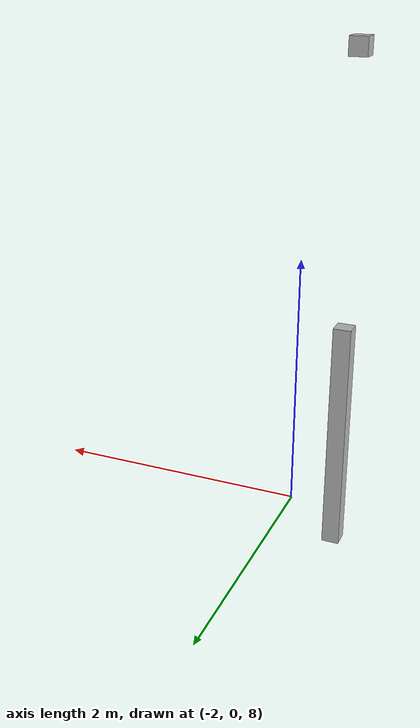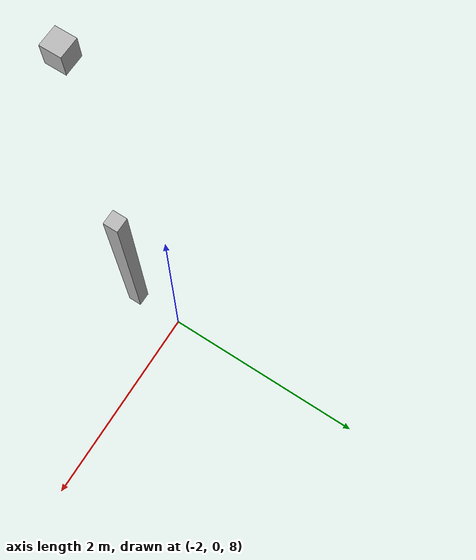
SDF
<sdf version="1.7">
 <world name="default">
  <model name="orthogonal_747_2.000.15_TS">
   <static>1</static>
   <link name="z_link_5_2_2">
    <inertial>
     <mass>1</mass>
     <inertia>
      <ixx>0.166667</ixx>
      <ixy>0</ixy>
      <ixz>0</ixz>
      <iyy>0.166667</iyy>
      <iyz>0</iyz>
      <izz>0.166667</izz>
     </inertia>
    </inertial>
    <pose>4.3 4.3 10.75 0 -0 0</pose>
    <visual name="visual_0">
     <laser_retro>4817</laser_retro>
     <geometry><box><size>0.15 1e-06 2</size></box></geometry>
     <material>
      <script><name>Gazebo/Grey</name><uri>file://media/materials/scripts/gazebo.material</uri></script>
      <shader type="pixel"><normal_map>__default__</normal_map></shader>
      <ambient>0.678 0.498 0.659 1</ambient>
      <diffuse>0.7 0.7 0.7 1</diffuse>
      <specular>0.01 0.01 0.01 1</specular>
      <emissive>0 0 0 1</emissive>
     </material>
     <pose>0 -0.075 0 0 -0 0</pose>
     <transparency>1</transparency>
    </visual>
    <visual name="visual_1">
     <laser_retro>4818</laser_retro>
     <geometry><box><size>0.15 1e-06 2</size></box></geometry>
     <material>
      <script><name>Gazebo/Grey</name><uri>file://media/materials/scripts/gazebo.material</uri></script>
      <shader type="pixel"><normal_map>__default__</normal_map></shader>
      <ambient>0.447 0.624 0.812 1</ambient>
      <diffuse>0.7 0.7 0.7 1</diffuse>
      <specular>0.01 0.01 0.01 1</specular>
      <emissive>0 0 0 1</emissive>
     </material>
     <pose>0 0.075 0 0 -0 0</pose>
     <transparency>1</transparency>
    </visual>
    <visual name="visual_2">
     <laser_retro>4819</laser_retro>
     <geometry><box><size>0.15 0.15 1e-06</size></box></geometry>
     <material>
      <script><name>Gazebo/Grey</name><uri>file://media/materials/scripts/gazebo.material</uri></script>
      <shader type="pixel"><normal_map>__default__</normal_map></shader>
      <ambient>0.988 0.686 0.243 1</ambient>
      <diffuse>0.7 0.7 0.7 1</diffuse>
      <specular>0.01 0.01 0.01 1</specular>
      <emissive>0 0 0 1</emissive>
     </material>
     <pose>0 0 -1 0 -0 0</pose>
     <transparency>1</transparency>
    </visual>
    <visual name="visual_3">
     <laser_retro>4820</laser_retro>
     <geometry><box><size>1e-06 0.15 2</size></box></geometry>
     <material>
      <script><name>Gazebo/Grey</name><uri>file://media/materials/scripts/gazebo.material</uri></script>
      <shader type="pixel"><normal_map>__default__</normal_map></shader>
      <ambient>0.988 0.914 0.31 1</ambient>
      <diffuse>0.7 0.7 0.7 1</diffuse>
      <specular>0.01 0.01 0.01 1</specular>
      <emissive>0 0 0 1</emissive>
     </material>
     <pose>0.075 0 0 0 -0 0</pose>
     <transparency>1</transparency>
    </visual>
    <visual name="visual_4">
     <laser_retro>4821</laser_retro>
     <geometry><box><size>0.15 0.15 1e-06</size></box></geometry>
     <material>
      <script><name>Gazebo/Grey</name><uri>file://media/materials/scripts/gazebo.material</uri></script>
      <shader type="pixel"><normal_map>__default__</normal_map></shader>
      <ambient>0.937 0.161 0.161 1</ambient>
      <diffuse>0.7 0.7 0.7 1</diffuse>
      <specular>0.01 0.01 0.01 1</specular>
      <emissive>0 0 0 1</emissive>
     </material>
     <pose>0 0 1 0 -0 0</pose>
     <transparency>1</transparency>
    </visual>
    <visual name="visual_5">
     <laser_retro>4822</laser_retro>
     <geometry><box><size>1e-06 0.15 2</size></box></geometry>
     <material>
      <script><name>Gazebo/Grey</name><uri>file://media/materials/scripts/gazebo.material</uri></script>
      <shader type="pixel"><normal_map>__default__</normal_map></shader>
      <ambient>0.541 0.886 0.204 1</ambient>
      <diffuse>0.7 0.7 0.7 1</diffuse>
      <specular>0.01 0.01 0.01 1</specular>
      <emissive>0 0 0 1</emissive>
     </material>
     <pose>-0.075 0 0 0 -0 0</pose>
     <transparency>1</transparency>
    </visual>
    <visual name="visual_texture">
     <geometry><box><size>0.149985 0.149985 1.9998</size></box></geometry>
     <material>
      <script>
       <uri>model://BASE_MODELS/simple_block_v2_textured/materials/scripts</uri>
       <uri>model://BASE_MODELS/simple_block_v2_textured/materials/textures</uri>
       <name>metal</name>
      </script>
     </material>
     <laser_retro>4823</laser_retro>
    </visual>
    <collision name="collision">
     <geometry><box><size>0.15 0.15 2</size></box></geometry>
     <surface>
      <friction>
       <ode><mu>1</mu><mu2>1</mu2><fdir1>0 0 0</fdir1><slip1>0</slip1><slip2>0</slip2></ode>
       <torsional>
        <coefficient>1</coefficient>
        <patch_radius>0</patch_radius>
        <surface_radius>0</surface_radius>
        <use_patch_radius>1</use_patch_radius>
        <ode><slip>0</slip></ode>
       </torsional>
      </friction>
      <bounce><restitution_coefficient>0</restitution_coefficient><threshold>1e+06</threshold></bounce>
      <contact>
       <collide_without_contact>0</collide_without_contact>
       <collide_without_contact_bitmask>1</collide_without_contact_bitmask>
       <collide_bitmask>1</collide_bitmask>
       <ode>
        <soft_cfm>0</soft_cfm>
        <soft_erp>0.2</soft_erp>
        <kp>1e+13</kp>
        <kd>1</kd>
        <max_vel>0.01</max_vel>
        <min_depth>0</min_depth>
       </ode>
       <bullet>
        <split_impulse>1</split_impulse>
        <split_impulse_penetration_threshold>-0.01</split_impulse_penetration_threshold>
        <soft_cfm>0</soft_cfm>
        <soft_erp>0.2</soft_erp>
        <kp>1e+13</kp>
        <kd>1</kd>
       </bullet>
      </contact>
     </surface>
    </collision>
   </link>
   <link name="u_link_6_2_2">
    <inertial>
     <mass>1</mass>
     <inertia>
      <ixx>0.166667</ixx>
      <ixy>0</ixy>
      <ixz>0</ixz>
      <iyy>0.166667</iyy>
      <iyz>0</iyz>
      <izz>0.166667</izz>
     </inertia>
    </inertial>
    <pose>4.3 4.3 13.975 0 -0 0</pose>
    <visual name="visual_0">
     <laser_retro>5769</laser_retro>
     <geometry><box><size>0.15 1e-06 0.15</size></box></geometry>
     <material>
      <script><name>Gazebo/Grey</name><uri>file://media/materials/scripts/gazebo.material</uri></script>
      <shader type="pixel"><normal_map>__default__</normal_map></shader>
      <ambient>0.678 0.498 0.659 1</ambient>
      <diffuse>0.7 0.7 0.7 1</diffuse>
      <specular>0.01 0.01 0.01 1</specular>
      <emissive>0 0 0 1</emissive>
     </material>
     <pose>0 -0.075 0 0 -0 0</pose>
     <transparency>1</transparency>
    </visual>
    <visual name="visual_1">
     <laser_retro>5770</laser_retro>
     <geometry><box><size>0.15 1e-06 0.15</size></box></geometry>
     <material>
      <script><name>Gazebo/Grey</name><uri>file://media/materials/scripts/gazebo.material</uri></script>
      <shader type="pixel"><normal_map>__default__</normal_map></shader>
      <ambient>0.447 0.624 0.812 1</ambient>
      <diffuse>0.7 0.7 0.7 1</diffuse>
      <specular>0.01 0.01 0.01 1</specular>
      <emissive>0 0 0 1</emissive>
     </material>
     <pose>0 0.075 0 0 -0 0</pose>
     <transparency>1</transparency>
    </visual>
    <visual name="visual_2">
     <laser_retro>5771</laser_retro>
     <geometry><box><size>0.15 0.15 1e-06</size></box></geometry>
     <material>
      <script><name>Gazebo/Grey</name><uri>file://media/materials/scripts/gazebo.material</uri></script>
      <shader type="pixel"><normal_map>__default__</normal_map></shader>
      <ambient>0.988 0.686 0.243 1</ambient>
      <diffuse>0.7 0.7 0.7 1</diffuse>
      <specular>0.01 0.01 0.01 1</specular>
      <emissive>0 0 0 1</emissive>
     </material>
     <pose>0 0 -0.075 0 -0 0</pose>
     <transparency>1</transparency>
    </visual>
    <visual name="visual_3">
     <laser_retro>5772</laser_retro>
     <geometry><box><size>1e-06 0.15 0.15</size></box></geometry>
     <material>
      <script><name>Gazebo/Grey</name><uri>file://media/materials/scripts/gazebo.material</uri></script>
      <shader type="pixel"><normal_map>__default__</normal_map></shader>
      <ambient>0.988 0.914 0.31 1</ambient>
      <diffuse>0.7 0.7 0.7 1</diffuse>
      <specular>0.01 0.01 0.01 1</specular>
      <emissive>0 0 0 1</emissive>
     </material>
     <pose>0.075 0 0 0 -0 0</pose>
     <transparency>1</transparency>
    </visual>
    <visual name="visual_4">
     <laser_retro>5773</laser_retro>
     <geometry><box><size>0.15 0.15 1e-06</size></box></geometry>
     <material>
      <script><name>Gazebo/Grey</name><uri>file://media/materials/scripts/gazebo.material</uri></script>
      <shader type="pixel"><normal_map>__default__</normal_map></shader>
      <ambient>0.937 0.161 0.161 1</ambient>
      <diffuse>0.7 0.7 0.7 1</diffuse>
      <specular>0.01 0.01 0.01 1</specular>
      <emissive>0 0 0 1</emissive>
     </material>
     <pose>0 0 0.075 0 -0 0</pose>
     <transparency>1</transparency>
    </visual>
    <visual name="visual_5">
     <laser_retro>5774</laser_retro>
     <geometry><box><size>1e-06 0.15 0.15</size></box></geometry>
     <material>
      <script><name>Gazebo/Grey</name><uri>file://media/materials/scripts/gazebo.material</uri></script>
      <shader type="pixel"><normal_map>__default__</normal_map></shader>
      <ambient>0.541 0.886 0.204 1</ambient>
      <diffuse>0.7 0.7 0.7 1</diffuse>
      <specular>0.01 0.01 0.01 1</specular>
      <emissive>0 0 0 1</emissive>
     </material>
     <pose>-0.075 0 0 0 -0 0</pose>
     <transparency>1</transparency>
    </visual>
    <visual name="visual_texture">
     <geometry><box><size>0.149985 0.149985 0.149985</size></box></geometry>
     <material>
      <script>
       <uri>model://BASE_MODELS/simple_block_v2_textured/materials/scripts</uri>
       <uri>model://BASE_MODELS/simple_block_v2_textured/materials/textures</uri>
       <name>metal</name>
      </script>
     </material>
     <laser_retro>5775</laser_retro>
    </visual>
    <collision name="collision">
     <geometry><box><size>0.15 0.15 0.15</size></box></geometry>
     <surface>
      <friction>
       <ode><mu>1</mu><mu2>1</mu2><fdir1>0 0 0</fdir1><slip1>0</slip1><slip2>0</slip2></ode>
       <torsional>
        <coefficient>1</coefficient>
        <patch_radius>0</patch_radius>
        <surface_radius>0</surface_radius>
        <use_patch_radius>1</use_patch_radius>
        <ode><slip>0</slip></ode>
       </torsional>
      </friction>
      <bounce><restitution_coefficient>0</restitution_coefficient><threshold>1e+06</threshold></bounce>
      <contact>
       <collide_without_contact>0</collide_without_contact>
       <collide_without_contact_bitmask>1</collide_without_contact_bitmask>
       <collide_bitmask>1</collide_bitmask>
       <ode>
        <soft_cfm>0</soft_cfm>
        <soft_erp>0.2</soft_erp>
        <kp>1e+13</kp>
        <kd>1</kd>
        <max_vel>0.01</max_vel>
        <min_depth>0</min_depth>
       </ode>
       <bullet>
        <split_impulse>1</split_impulse>
        <split_impulse_penetration_threshold>-0.01</split_impulse_penetration_threshold>
        <soft_cfm>0</soft_cfm>
        <soft_erp>0.2</soft_erp>
        <kp>1e+13</kp>
        <kd>1</kd>
       </bullet>
      </contact>
     </surface>
    </collision>
   </link>
   <pose>-6.47624 -5 -2.5 0 -0 0</pose>
  </model>
 </world>
</sdf>
